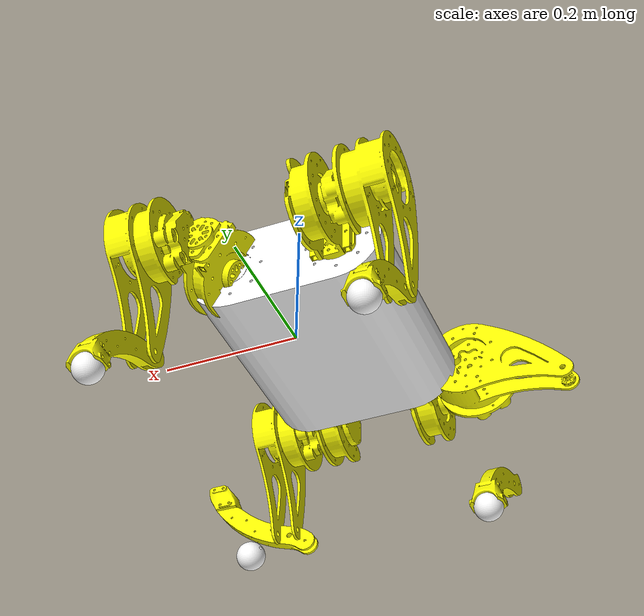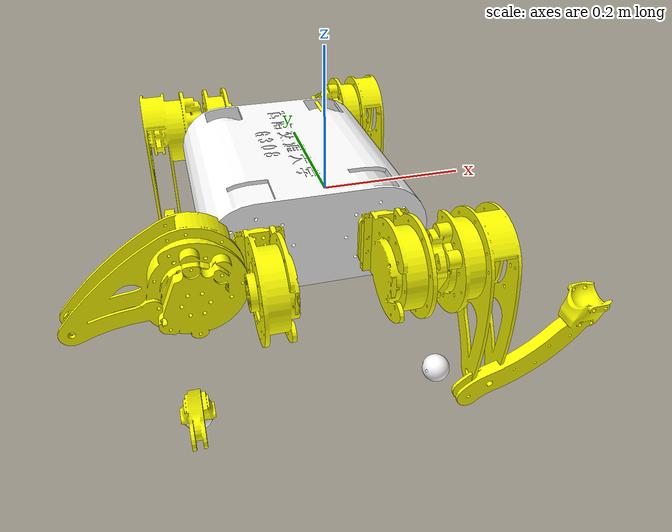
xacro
<?xml version="1.0" encoding="utf-8"?>
<robot name="g308_test4" xmlns:xacro="http://www.ros.org/wiki/xacro">
  <link
    name="base">
    <inertial>
      <origin
        xyz="-0.0461979664524284 -1.17681768195695E-05 0.0105492310143219"
        rpy="0 0 0" />
      <mass
        value="3.380" />
      <inertia
        ixx="0.053093"
        ixy="0.000016"
        ixz="-0.0000001"
        iyy="0.024965"
        iyz="0.0000001"
        izz=" 0.071773" />
    </inertial>
    <visual>
      <origin
        xyz="0 0 0"
        rpy="0 0 0" />
      <geometry>
        <mesh
          filename="package://g308_test4/meshes/base.STL" />
      </geometry>
      <material
        name="">
        <color
          rgba="1 1 1 1" />
      </material>
    </visual>
    <collision>
      <origin
        xyz="0 0 0"
        rpy="0 0 0" />
      <geometry>
        <mesh
          filename="package://g308_test4/meshes/base.STL" />
      </geometry>
    </collision>
  </link>
  <link
    name="FL_hip">
    <inertial>
      <origin
        xyz="0.0116552172002281 2.25295518936925E-05 0.0109687547571238"
        rpy="0 0 0" />
      <mass
        value="0.6742" />
      <inertia
        ixx="0.000595"
        ixy="0.0"
        ixz="-0.000005"
        iyy=" 0.000427"
        iyz="0.0"
        izz=" 0.000261" />
    </inertial>
    <visual>
      <origin
        xyz="0 0 0"
        rpy="0 0 0" />
      <geometry>
        <mesh
          filename="package://g308_test4/meshes/FL_hip.STL" />
      </geometry>
      <material
        name="">
        <color
          rgba="1 1 0 1" />
      </material>
    </visual>
    <collision>
      <origin
        xyz="0 0 0"
        rpy="0 0 0" />
      <geometry>
        <mesh
          filename="package://g308_test4/meshes/FL_hip.STL" />
      </geometry>
    </collision>
  </link>
  <joint
    name="FL_hip_joint"
    type="revolute">
    <origin
      xyz="-0.133706585889136 0.227700000000001 0.0123506153752162"
      rpy="1.5707963267949 0 0" />
    <parent
      link="base" />
    <child
      link="FL_hip" />
    <axis
      xyz="0 0 -1" />
    <limit
      lower="-0.4"
      upper="0.3"
      effort="20"
      velocity="10" />
  </joint>
  <link
    name="FL_thigh">
    <inertial>
      <origin
        xyz="0.00755809863982321 -0.00569509632056056 0.000848464541166216"
        rpy="0 0 0" />
      <mass
        value="0.834757" />
      <inertia
        ixx="0.001081"
        ixy="-0.000083"
        ixz="0.000024"
        iyy="0.000676"
        iyz="0.000065"
        izz="0.000984" />
    </inertial>
    <visual>
      <origin
        xyz="0 0 0"
        rpy="0 0 0" />
      <geometry>
        <mesh
          filename="package://g308_test4/meshes/FL_thigh.STL" />
      </geometry>
      <material
        name="">
        <color
          rgba="1 1 0 1" />
      </material>
    </visual>
    <collision>
      <origin
        xyz="0 0 0"
        rpy="0 0 0" />
      <geometry>
        <mesh
          filename="package://g308_test4/meshes/FL_thigh.STL" />
      </geometry>
    </collision>
  </link>
  <joint
    name="FL_thigh_joint"
    type="revolute">
    <origin
      xyz="-0.0674999999999899 0 0"
      rpy="0 0 0" />
    <parent
      link="FL_hip" />
    <child
      link="FL_thigh" />
    <axis
      xyz="1 0 0" />
    <limit
      lower="-0.75"
      upper="1.0"
      effort="20"
      velocity="10" />
  </joint>
  <link
    name="FL_calf">
    <inertial>
      <origin
        xyz="3.42754513094901E-05 -0.040020083745353 -0.0633313265646756"
        rpy="0 0 0" />
      <mass
        value="0.101165794083911" />
      <inertia
        ixx=" 0.000335"
        ixy="0."
        ixz="0."
        iyy=" 0.000217"
        iyz="-0.000149"
        izz=" 0.000129" />
    </inertial>
    <visual>
      <origin
        xyz="0 0 0"
        rpy="0 0 0" />
      <geometry>
        <mesh
          filename="package://g308_test4/meshes/FL_calf.STL" />
      </geometry>
      <material
        name="">
        <color
          rgba="1 1 0 1" />
      </material>
    </visual>
    <collision>
      <origin
        xyz="0 0 0"
        rpy="0 0 0" />
      <geometry>
        <mesh
          filename="package://g308_test4/meshes/FL_calf.STL" />
      </geometry>
    </collision>
  </link>
  <joint
    name="FL_calf_joint"
    type="revolute">
    <origin
      xyz="-0.0180000000000018 -0.144888873943371 0.0388228567653897"
      rpy="0 0 0" />
    <parent
      link="FL_thigh" />
    <child
      link="FL_calf" />
    <axis
      xyz="1 0 0" />
    <limit
      lower="-1.3"
      upper="1.3"
      effort="20"
      velocity="10" />
  </joint>
  <link
    name="FL_foot">
    <inertial>
      <origin
        xyz="3.00659323299035E-07 -0.000157836202697853 -1.34139065289807E-05"
        rpy="0 0 0" />
      <mass
        value="0.0324776231528867" />
      <inertia
        ixx="5.27515496642011E-06"
        ixy="1.52667443892797E-10"
        ixz="7.22783020602248E-12"
        iyy="5.19389260053744E-06"
        iyz="-2.63599504965102E-09"
        izz="5.22466745579372E-06" />
    </inertial>
    <visual>
      <origin
        xyz="0 0 0"
        rpy="0 0 0" />
      <geometry>
        <mesh
          filename="package://g308_test4/meshes/FL_foot.STL" />
      </geometry>
      <material
        name="">
        <color
          rgba="1 1 1 1" />
      </material>
    </visual>
    <collision>
      <origin
        xyz="0 0 0"
        rpy="0 0 0" />
      <geometry>
        <mesh
          filename="package://g308_test4/meshes/FL_foot.STL" />
      </geometry>
    </collision>
  </link>
  <joint
    name="FL_foot_joint"
    type="fixed">
    <origin
      xyz="0.000149999999999928 -0.106314214351297 -0.115518487694811"
      rpy="0 0 0" />
    <parent
      link="FL_calf" />
    <child
      link="FL_foot" />
    <axis
      xyz="0 0 0" />
  </joint>
  <link
    name="RL_hip">
    <inertial>
      <origin
        xyz="0.0116552172002268 -2.2529551893951E-05 -0.0109687547571238"
        rpy="0 0 0" />
      <mass
        value="0.6742" />
      <inertia
        ixx="0.000595"
        ixy="0.0"
        ixz="-0.000005"
        iyy=" 0.000427"
        iyz="0.0"
        izz=" 0.000261" />
    </inertial>
    <visual>
      <origin
        xyz="0 0 0"
        rpy="0 0 0" />
      <geometry>
        <mesh
          filename="package://g308_test4/meshes/RL_hip.STL" />
      </geometry>
      <material
        name="">
        <color
          rgba="1 1 0 1" />
      </material>
    </visual>
    <collision>
      <origin
        xyz="0 0 0"
        rpy="0 0 0" />
      <geometry>
        <mesh
          filename="package://g308_test4/meshes/RL_hip.STL" />
      </geometry>
    </collision>
  </link>
  <joint
    name="RL_hip_joint"
    type="revolute">
    <origin
      xyz="-0.133706585889129 -0.2277 0.0120506153752187"
      rpy="1.5707963267949 0 0" />
    <parent
      link="base" />
    <child
      link="RL_hip" />
    <axis
      xyz="0 0 -1" />
    <limit
      lower="-0.4"
      upper="0.3"
      effort="20"
      velocity="10" />
  </joint>
  <link
    name="RL_thigh">
    <inertial>
      <origin
        xyz="0.00755809863982393 -0.00569509632055179 0.000848464541168548"
        rpy="0 0 0" />
      <mass
        value="0.834757" />
      <inertia
        ixx="0.001081"
        ixy="-0.000083"
        ixz="0.000024"
        iyy="0.000676"
        iyz="0.000065"
        izz="0.000984" />
    </inertial>
    <visual>
      <origin
        xyz="0 0 0"
        rpy="0 0 0" />
      <geometry>
        <mesh
          filename="package://g308_test4/meshes/RL_thigh.STL" />
      </geometry>
      <material
        name="">
        <color
          rgba="1 1 0 1" />
      </material>
    </visual>
    <collision>
      <origin
        xyz="0 0 0"
        rpy="0 0 0" />
      <geometry>
        <mesh
          filename="package://g308_test4/meshes/RL_thigh.STL" />
      </geometry>
    </collision>
  </link>
  <joint
    name="RL_thigh_joint"
    type="revolute">
    <origin
      xyz="-0.0674999999999994 0 0"
      rpy="0 0 0" />
    <parent
      link="RL_hip" />
    <child
      link="RL_thigh" />
    <axis
      xyz="1 0 0" />
    <limit
      lower="-0.75"
      upper="1.0"
      effort="20"
      velocity="10" />
  </joint>
  <link
    name="RL_calf">
    <inertial>
      <origin
        xyz="3.42754513096288E-05 -0.0400200837453503 -0.0633313265646797"
        rpy="0 0 0" />
      <mass
        value="0.101165794083911" />
      <inertia
        ixx=" 0.000335"
        ixy="0."
        ixz="0."
        iyy=" 0.000217"
        iyz="-0.000149"
        izz=" 0.000129" />
    </inertial>
    <visual>
      <origin
        xyz="0 0 0"
        rpy="0 0 0" />
      <geometry>
        <mesh
          filename="package://g308_test4/meshes/RL_calf.STL" />
      </geometry>
      <material
        name="">
        <color
          rgba="1 1 0 1" />
      </material>
    </visual>
    <collision>
      <origin
        xyz="0 0 0"
        rpy="0 0 0" />
      <geometry>
        <mesh
          filename="package://g308_test4/meshes/RL_calf.STL" />
      </geometry>
    </collision>
  </link>
  <joint
    name="RL_calf_joint"
    type="revolute">
    <origin
      xyz="-0.0180000000000004 -0.144888873943361 0.0388228567653868"
      rpy="0 0 0" />
    <parent
      link="RL_thigh" />
    <child
      link="RL_calf" />
    <axis
      xyz="1 0 0" />
    <limit
      lower="-1.3"
      upper="1.3"
      effort="20"
      velocity="10" />
  </joint>
  <link
    name="RL_foot">
    <inertial>
      <origin
        xyz="-3.97575039556841E-09 -0.000158405461231914 -1.23199536683494E-09"
        rpy="0 0 0" />
      <mass
        value="0.0324776231528866" />
      <inertia
        ixx="5.27515525323502E-06"
        ixy="-1.11411298083647E-13"
        ixz="2.27169126339279E-12"
        iyy="5.19366816295093E-06"
        iyz="1.25235730340677E-12"
        izz="5.22489160656526E-06" />
    </inertial>
    <visual>
      <origin
        xyz="0 0 0"
        rpy="0 0 0" />
      <geometry>
        <mesh
          filename="package://g308_test4/meshes/RL_foot.STL" />
      </geometry>
      <material
        name="">
        <color
          rgba="1 1 1 1" />
      </material>
    </visual>
    <collision>
      <origin
        xyz="0 0 0"
        rpy="0 0 0" />
      <geometry>
        <mesh
          filename="package://g308_test4/meshes/RL_foot.STL" />
      </geometry>
    </collision>
  </link>
  <joint
    name="RL_foot_joint"
    type="fixed">
    <origin
      xyz="0.000150000000000344 -0.106314214351312 -0.115518487694808"
      rpy="0 0 0" />
    <parent
      link="RL_calf" />
    <child
      link="RL_foot" />
    <axis
      xyz="0 0 0" />
  </joint>
  <link
    name="FR_hip">
    <inertial>
      <origin
        xyz="-0.0116552172002267 -3.68438686368499E-05 0.0109687547571236"
        rpy="0 0 0" />
      <mass
        value="0.6742" />
      <inertia
        ixx="0.000595"
        ixy="0.0"
        ixz="0.000005"
        iyy=" 0.000427"
        iyz="0.0"
        izz=" 0.000261" />
    </inertial>
    <visual>
      <origin
        xyz="0 0 0"
        rpy="0 0 0" />
      <geometry>
        <mesh
          filename="package://g308_test4/meshes/FR_hip.STL" />
      </geometry>
      <material
        name="">
        <color
          rgba="1 1 0 1" />
      </material>
    </visual>
    <collision>
      <origin
        xyz="0 0 0"
        rpy="0 0 0" />
      <geometry>
        <mesh
          filename="package://g308_test4/meshes/FR_hip.STL" />
      </geometry>
    </collision>
  </link>
  <joint
    name="FR_hip_joint"
    type="revolute">
    <origin
      xyz="0.0412934141108763 0.2277 0.0122006153752204"
      rpy="1.5707963267949 0 0" />
    <parent
      link="base" />
    <child
      link="FR_hip" />
    <axis
      xyz="0 0 -1" />
    <limit
      lower="-0.4"
      upper="0.3"
      effort="20"
      velocity="10" />
  </joint>
  <link
    name="FR_thigh">
    <inertial>
      <origin
        xyz="-0.00755809863982528 -0.00565194816744022 0.000873376138983611"
        rpy="0 0 0" />
      <mass
        value="0.834757" />
      <inertia
        ixx="0.001081"
        ixy="0.000083"
        ixz="-0.000024"
        iyy="0.000676"
        iyz="0.000065"
        izz="0.000984" />
    </inertial>
    <visual>
      <origin
        xyz="0 0 0"
        rpy="0 0 0" />
      <geometry>
        <mesh
          filename="package://g308_test4/meshes/FR_thigh.STL" />
      </geometry>
      <material
        name="">
        <color
          rgba="1 1 0 1" />
      </material>
    </visual>
    <collision>
      <origin
        xyz="0 0 0"
        rpy="0 0 0" />
      <geometry>
        <mesh
          filename="package://g308_test4/meshes/FR_thigh.STL" />
      </geometry>
    </collision>
  </link>
  <joint
    name="FR_thigh_joint"
    type="revolute">
    <origin
      xyz="0.0675000000000023 0 0"
      rpy="0 0 0" />
    <parent
      link="FR_hip" />
    <child
      link="FR_thigh" />
    <axis
      xyz="1 0 0" />
    <limit
      lower="-0.75"
      upper="1.0"
      effort="20"
      velocity="10" />
  </joint>
  <link
    name="FR_calf">
    <inertial>
      <origin
        xyz="3.42754513094345E-05 -0.0400200837453495 -0.063331326564677"
        rpy="0 0 0" />
      <mass
        value="0.101165794083911" />
      <inertia
        ixx=" 0.000335"
        ixy="0."
        ixz="0."
        iyy=" 0.000217"
        iyz="-0.000149"
        izz=" 0.000129" />
    </inertial>
    <visual>
      <origin
        xyz="0 0 0"
        rpy="0 0 0" />
      <geometry>
        <mesh
          filename="package://g308_test4/meshes/FR_calf.STL" />
      </geometry>
      <material
        name="">
        <color
          rgba="1 1 0 1" />
      </material>
    </visual>
    <collision>
      <origin
        xyz="0 0 0"
        rpy="0 0 0" />
      <geometry>
        <mesh
          filename="package://g308_test4/meshes/FR_calf.STL" />
      </geometry>
    </collision>
  </link>
  <joint
    name="FR_calf_joint"
    type="revolute">
    <origin
      xyz="0.0179999999999943 -0.14488887394336 0.0388228567653765"
      rpy="0 0 0" />
    <parent
      link="FR_thigh" />
    <child
      link="FR_calf" />
    <axis
      xyz="1 0 0" />
    <limit
      lower="-1.3"
      upper="1.3"
      effort="20"
      velocity="10" />
  </joint>
  <link
    name="FR_foot">
    <inertial>
      <origin
        xyz="3.00659323326791E-07 -0.000157836202697964 -1.34139065288141E-05"
        rpy="0 0 0" />
      <mass
        value="0.0324776231528866" />
      <inertia
        ixx="5.27515496642011E-06"
        ixy="1.52667443887201E-10"
        ixz="7.2278302080268E-12"
        iyy="5.19389260053743E-06"
        iyz="-2.6359950496578E-09"
        izz="5.22466745579371E-06" />
    </inertial>
    <visual>
      <origin
        xyz="0 0 0"
        rpy="0 0 0" />
      <geometry>
        <mesh
          filename="package://g308_test4/meshes/FR_foot.STL" />
      </geometry>
      <material
        name="">
        <color
          rgba="1 1 1 1" />
      </material>
    </visual>
    <collision>
      <origin
        xyz="0 0 0"
        rpy="0 0 0" />
      <geometry>
        <mesh
          filename="package://g308_test4/meshes/FR_foot.STL" />
      </geometry>
    </collision>
  </link>
  <joint
    name="FR_foot_joint"
    type="fixed">
    <origin
      xyz="0.000149999999999789 -0.106314214351308 -0.115518487694804"
      rpy="0 0 0" />
    <parent
      link="FR_calf" />
    <child
      link="FR_foot" />
    <axis
      xyz="0 0 0" />
  </joint>
  <link
    name="RR_hip">
    <inertial>
      <origin
        xyz="-0.0116552172002267 3.68438686359253E-05 -0.0109687547571237"
        rpy="0 0 0" />
      <mass
        value="0.6742" />
      <inertia
        ixx="0.000595"
        ixy="0.0"
        ixz="-0.000005"
        iyy=" 0.000427"
        iyz="0.0"
        izz=" 0.000261" />
    </inertial>
    <visual>
      <origin
        xyz="0 0 0"
        rpy="0 0 0" />
      <geometry>
        <mesh
          filename="package://g308_test4/meshes/RR_hip.STL" />
      </geometry>
      <material
        name="">
        <color
          rgba="1 1 0 1" />
      </material>
    </visual>
    <collision>
      <origin
        xyz="0 0 0"
        rpy="0 0 0" />
      <geometry>
        <mesh
          filename="package://g308_test4/meshes/RR_hip.STL" />
      </geometry>
    </collision>
  </link>
  <joint
    name="RR_hip_joint"
    type="revolute">
    <origin
      xyz="0.0412934141108729 -0.2277 0.0122006153752164"
      rpy="1.5707963267949 0 0" />
    <parent
      link="base" />
    <child
      link="RR_hip" />
    <axis
      xyz="0 0 -1" />
    <limit
      lower="-0.4"
      upper="0.3"
      effort="20"
      velocity="10" />
  </joint>
  <link
    name="RR_thigh">
    <inertial>
      <origin
        xyz="-0.00755809863982285 -0.00633880260304969 0.00196339652760066"
        rpy="0 0 0" />
      <mass
        value="0.834757" />
      <inertia
        ixx="0.001078"
        ixy="0.000077"
        ixz="-0.000014"
        iyy="0.000675"
        iyz="0.000063"
        izz="0.000981" />
    </inertial>
    <visual>
      <origin
        xyz="0 0 0"
        rpy="0 0 0" />
      <geometry>
        <mesh
          filename="package://g308_test4/meshes/RR_thigh.STL" />
      </geometry>
      <material
        name="">
        <color
          rgba="1 1 0 1" />
      </material>
    </visual>
    <collision>
      <origin
        xyz="0 0 0"
        rpy="0 0 0" />
      <geometry>
        <mesh
          filename="package://g308_test4/meshes/RR_thigh.STL" />
      </geometry>
    </collision>
  </link>
  <joint
    name="RR_thigh_joint"
    type="revolute">
    <origin
      xyz="0.0674999999999991 0 0"
      rpy="0 0 0" />
    <parent
      link="RR_hip" />
    <child
      link="RR_thigh" />
    <axis
      xyz="1 0 0" />
    <limit
      lower="-0.75"
      upper="1.0"
      effort="20"
      velocity="10" />
  </joint>
  <link
    name="RR_calf">
    <inertial>
      <origin
        xyz="3.42754513118215E-05 -0.0400200837453511 -0.0633313265646774"
        rpy="0 0 0" />
      <mass
        value="0.101165794083911" />
      <inertia
        ixx=" 0.000335"
        ixy="0."
        ixz="0."
        iyy=" 0.000217"
        iyz="-0.000149"
        izz=" 0.000129" />
    </inertial>
    <visual>
      <origin
        xyz="0 0 0"
        rpy="0 0 0" />
      <geometry>
        <mesh
          filename="package://g308_test4/meshes/RR_calf.STL" />
      </geometry>
      <material
        name="">
        <color
          rgba="1 1 0 1" />
      </material>
    </visual>
    <collision>
      <origin
        xyz="0 0 0"
        rpy="0 0 0" />
      <geometry>
        <mesh
          filename="package://g308_test4/meshes/RR_calf.STL" />
      </geometry>
    </collision>
  </link>
  <joint
    name="RR_calf_joint"
    type="revolute">
    <origin
      xyz="0.0179999999999977 -0.144888873943359 0.0388228567653716"
      rpy="0 0 0" />
    <parent
      link="RR_thigh" />
    <child
      link="RR_calf" />
    <axis
      xyz="1 0 0" />
    <limit
      lower="-1.3"
      upper="1.3"
      effort="20"
      velocity="10" />
  </joint>
  <link
    name="RR_foot">
    <inertial>
      <origin
        xyz="-3.97575009025708E-09 -0.000158405453709098 -1.23218241165901E-09"
        rpy="0 0 0" />
      <mass
        value="0.0324776231528866" />
      <inertia
        ixx="5.27515525323502E-06"
        ixy="-1.11411298191749E-13"
        ixz="2.2716912642438E-12"
        iyy="5.19366816295093E-06"
        iyz="1.25235730445715E-12"
        izz="5.22489160656526E-06" />
    </inertial>
    <visual>
      <origin
        xyz="0 0 0"
        rpy="0 0 0" />
      <geometry>
        <mesh
          filename="package://g308_test4/meshes/RR_foot.STL" />
      </geometry>
      <material
        name="">
        <color
          rgba="1 1 1 1" />
      </material>
    </visual>
    <collision>
      <origin
        xyz="0 0 0"
        rpy="0 0 0" />
      <geometry>
        <mesh
          filename="package://g308_test4/meshes/RR_foot.STL" />
      </geometry>
    </collision>
  </link>
  <joint
    name="RR_foot"
    type="fixed">
    <origin
      xyz="0.000150000000003925 -0.106314214361343 -0.115518487694555"
      rpy="0 0 0" />
    <parent
      link="RR_calf" />
    <child
      link="RR_foot" />
    <axis
      xyz="0 0 0" />
  </joint>
  <transmission name="t11">
    <type>transmission_interface/SimpleTransmission</type>
    <joint name="FL_hip_joint">
      <hardwareInterface>hardware_interface/EffortJointInterface</hardwareInterface>
    </joint>
    <actuator name="a11">
      <mechanicalReduction>1.0</mechanicalReduction>
      <hardwareInterface>hardware_interface/EffortJointInterface</hardwareInterface>
    </actuator>
  </transmission>
   <transmission name="t12">
    <type>transmission_interface/SimpleTransmission</type>
    <joint name="FL_thigh_joint">
      <hardwareInterface>hardware_interface/EffortJointInterface</hardwareInterface>
    </joint>
    <actuator name="a12">
      <mechanicalReduction>1.0</mechanicalReduction>
      <hardwareInterface>hardware_interface/EffortJointInterface</hardwareInterface>
    </actuator>
  </transmission>
   <transmission name="t13">
    <type>transmission_interface/SimpleTransmission</type>
    <joint name="FL_calf_joint">
      <hardwareInterface>hardware_interface/EffortJointInterface</hardwareInterface>
    </joint>
    <actuator name="a13">
      <mechanicalReduction>1.0</mechanicalReduction>
      <hardwareInterface>hardware_interface/EffortJointInterface</hardwareInterface>
    </actuator>
  </transmission>
  <transmission name="t21">
    <type>transmission_interface/SimpleTransmission</type>
    <joint name="RL_hip_joint">
      <hardwareInterface>hardware_interface/EffortJointInterface</hardwareInterface>
    </joint>
    <actuator name="a21">
      <mechanicalReduction>1.0</mechanicalReduction>
      <hardwareInterface>hardware_interface/EffortJointInterface</hardwareInterface>
    </actuator>
  </transmission>
   <transmission name="t22">
    <type>transmission_interface/SimpleTransmission</type>
    <joint name="RL_thigh_joint">
      <hardwareInterface>hardware_interface/EffortJointInterface</hardwareInterface>
    </joint>
    <actuator name="a21">
      <mechanicalReduction>1.0</mechanicalReduction>
      <hardwareInterface>hardware_interface/EffortJointInterface</hardwareInterface>
    </actuator>
  </transmission>
   <transmission name="t23">
    <type>transmission_interface/SimpleTransmission</type>
    <joint name="RL_calf_joint">
      <hardwareInterface>hardware_interface/EffortJointInterface</hardwareInterface>
    </joint>
    <actuator name="a23">
      <mechanicalReduction>1.0</mechanicalReduction>
      <hardwareInterface>hardware_interface/EffortJointInterface</hardwareInterface>
    </actuator>
  </transmission>
   <transmission name="t31">
    <type>transmission_interface/SimpleTransmission</type>
    <joint name="FR_hip_joint">
      <hardwareInterface>hardware_interface/EffortJointInterface</hardwareInterface>
    </joint>
    <actuator name="a31">
      <mechanicalReduction>1.0</mechanicalReduction>
      <hardwareInterface>hardware_interface/EffortJointInterface</hardwareInterface>
    </actuator>
  </transmission>
   <transmission name="t32">
    <type>transmission_interface/SimpleTransmission</type>
    <joint name="FR_thigh_joint">
      <hardwareInterface>hardware_interface/EffortJointInterface</hardwareInterface>
    </joint>
    <actuator name="a32">
      <mechanicalReduction>1.0</mechanicalReduction>
      <hardwareInterface>hardware_interface/EffortJointInterface</hardwareInterface>
    </actuator>
  </transmission>
   <transmission name="t32">
    <type>transmission_interface/SimpleTransmission</type>
    <joint name="FR_calf_joint">
      <hardwareInterface>hardware_interface/EffortJointInterface</hardwareInterface>
    </joint>
    <actuator name="a32">
      <mechanicalReduction>1.0</mechanicalReduction>
      <hardwareInterface>hardware_interface/EffortJointInterface</hardwareInterface>
    </actuator>
  </transmission>
   <transmission name="t41">
    <type>transmission_interface/SimpleTransmission</type>
    <joint name="RR_hip_joint">
      <hardwareInterface>hardware_interface/EffortJointInterface</hardwareInterface>
    </joint>
    <actuator name="a41">
      <mechanicalReduction>1.0</mechanicalReduction>
      <hardwareInterface>hardware_interface/EffortJointInterface</hardwareInterface>
    </actuator>
  </transmission>
   <transmission name="t42">
    <type>transmission_interface/SimpleTransmission</type>
    <joint name="RR_thigh_joint">
      <hardwareInterface>hardware_interface/EffortJointInterface</hardwareInterface>
    </joint>
    <actuator name="a42">
      <mechanicalReduction>1.0</mechanicalReduction>
      <hardwareInterface>hardware_interface/EffortJointInterface</hardwareInterface>
    </actuator>
  </transmission>
   <transmission name="t43">
    <type>transmission_interface/SimpleTransmission</type>
    <joint name="RR_calf_joint">
      <hardwareInterface>hardware_interface/EffortJointInterface</hardwareInterface>
    </joint>
    <actuator name="a43">
      <mechanicalReduction>1.0</mechanicalReduction>
      <hardwareInterface>hardware_interface/EffortJointInterface</hardwareInterface>
    </actuator>
  </transmission>
  <gazebo>
    <plugin name="gazebo_ros_control" filename="libgazebo_ros_control.so">
      <robotNamespace>/horse</robotNamespace>
      <robotSimType>gazebo_ros_control/DefaultRobotHWSim</robotSimType>
      <legacyModeNS>true</legacyModeNS>
    </plugin>
  </gazebo>
  <gazebo reference="base">
    <kp>1000000.0</kp>
    <kd>1.0</kd>
    <mu1>0.2</mu1>
    <mu2>0.2</mu2>
    <minDepth>0.001</minDepth>
  </gazebo>

  <gazebo reference="RR_foot">
    <kp>1000000.0</kp>
    <kd>1.0</kd>
    <mu1>0.2</mu1>
    <mu2>0.2</mu2>
    <minDepth>0.001</minDepth>
  </gazebo>

  <gazebo reference="FR_foot">

    <kp>1000000.0</kp>
    <kd>1.0</kd>
    <mu1>0.2</mu1>
    <mu2>0.2</mu2>
    <minDepth>0.001</minDepth>
  </gazebo>

  <gazebo reference="FL_foot">
    <kp>1000000.0</kp>
    <kd>1.0</kd>
    <mu1>0.2</mu1>
    <mu2>0.2</mu2>
    <minDepth>0.001</minDepth>
  </gazebo>

  <gazebo reference="RL_foot">
    <kp>1000000.0</kp>
    <kd>1.0</kd>
    <mu1>0.2</mu1>
    <mu2>0.2</mu2>
    <minDepth>0.001</minDepth>
  </gazebo>
</robot>
